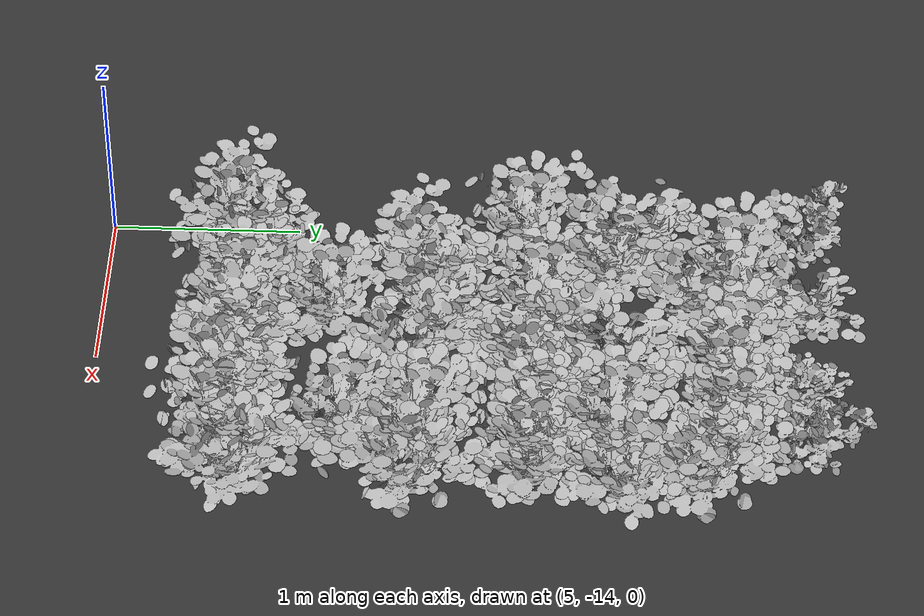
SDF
<sdf version="1.7">
 <world name="default">
  <model name="ground_plane">
   <static>1</static>
   <link name="link">
    <collision name="collision">
     <geometry><plane><normal>0 0 1</normal><size>100 100</size></plane></geometry>
     <surface>
      <contact><collide_bitmask>65535</collide_bitmask></contact>
      <friction><ode><mu>100</mu><mu2>50</mu2></ode></friction>
     </surface>
    </collision>
    <visual name="visual">
     <cast_shadows>0</cast_shadows>
     <geometry><plane><normal>0 0 1</normal><size>100 100</size></plane></geometry>
     <material>
      <ambient>0.2 0.2 0.2 1.0</ambient>
      <diffuse>0.2 0.2 0.2 1.0</diffuse>
      <specular>0.2 0.2 0.2 1.0</specular>
      <emissive>0.2 0.2 0.2 1.0</emissive>
     </material>
    </visual>
   </link>
  </model>
  <model name="ground">
   <pose>5 -0.5 0.01  3.141592654 0 0</pose>
   <static>true</static>
   <link name="body">
    <visual name="visual">
     <cast_shadows>0</cast_shadows>
     <geometry>
      <mesh><uri>file:///home/ifcosta/catkin_ws/src/cnn_line/worlds/models/ground.obj</uri></mesh>
     </geometry>
    </visual>
   </link>
  </model>
  <model name="plt_30017">
   <pose>5.09 -10.3 0.0143 0.0 0.0 -1.6119</pose>
   <static>true</static>
   <link name="body">
    <visual name="visual">
     <geometry>
      <mesh><uri>file:///home/ifcosta/catkin_ws/src/cnn_line/worlds/models/plant34.obj</uri></mesh>
     </geometry>
    </visual>
   </link>
  </model>
  <model name="plt_40017">
   <pose>5.09 -13.3 0.0143 0.0 0.0 0.80625</pose>
   <static>true</static>
   <link name="body">
    <visual name="visual">
     <geometry>
      <mesh><uri>file:///home/ifcosta/catkin_ws/src/cnn_line/worlds/models/plant37.obj</uri></mesh>
     </geometry>
    </visual>
   </link>
  </model>
  <model name="plt_40018">
   <pose>5.43 -13.2 0.0139 0.0 0.0 1.9287</pose>
   <static>true</static>
   <link name="body">
    <visual name="visual">
     <geometry>
      <mesh><uri>file:///home/ifcosta/catkin_ws/src/cnn_line/worlds/models/plant37.obj</uri></mesh>
     </geometry>
    </visual>
   </link>
  </model>
  <model name="plt_30019">
   <pose>5.7 -10.3 0.0103 0.0 0.0 -1.4289</pose>
   <static>true</static>
   <link name="body">
    <visual name="visual">
     <geometry>
      <mesh><uri>file:///home/ifcosta/catkin_ws/src/cnn_line/worlds/models/plant36.obj</uri></mesh>
     </geometry>
    </visual>
   </link>
  </model>
  <model name="plt_40019">
   <pose>5.7 -13.3 0.0103 0.0 0.0 0.30642</pose>
   <static>true</static>
   <link name="body">
    <visual name="visual">
     <geometry>
      <mesh><uri>file:///home/ifcosta/catkin_ws/src/cnn_line/worlds/models/plant37.obj</uri></mesh>
     </geometry>
    </visual>
   </link>
  </model>
  <model name="plt_40020">
   <pose>5.99 -13.2 0.0155 0.0 0.0 -2.019</pose>
   <static>true</static>
   <link name="body">
    <visual name="visual">
     <geometry>
      <mesh><uri>file:///home/ifcosta/catkin_ws/src/cnn_line/worlds/models/plant37.obj</uri></mesh>
     </geometry>
    </visual>
   </link>
  </model>
  <model name="plt_30021">
   <pose>6.31 -10.3 0.0148 0.0 0.0 0.13132</pose>
   <static>true</static>
   <link name="body">
    <visual name="visual">
     <geometry>
      <mesh><uri>file:///home/ifcosta/catkin_ws/src/cnn_line/worlds/models/plant31.obj</uri></mesh>
     </geometry>
    </visual>
   </link>
  </model>
  <model name="plt_40021">
   <pose>6.31 -13.3 0.0148 0.0 0.0 0.96213</pose>
   <static>true</static>
   <link name="body">
    <visual name="visual">
     <geometry>
      <mesh><uri>file:///home/ifcosta/catkin_ws/src/cnn_line/worlds/models/plant37.obj</uri></mesh>
     </geometry>
    </visual>
   </link>
  </model>
  <model name="plt_30022">
   <pose>6.63 -10.3 0.0137 0.0 0.0 -0.75681</pose>
   <static>true</static>
   <link name="body">
    <visual name="visual">
     <geometry>
      <mesh><uri>file:///home/ifcosta/catkin_ws/src/cnn_line/worlds/models/plant33.obj</uri></mesh>
     </geometry>
    </visual>
   </link>
  </model>
  <model name="plt_40022">
   <pose>6.63 -13.3 0.0137 0.0 0.0 0.63949</pose>
   <static>true</static>
   <link name="body">
    <visual name="visual">
     <geometry>
      <mesh><uri>file:///home/ifcosta/catkin_ws/src/cnn_line/worlds/models/plant37.obj</uri></mesh>
     </geometry>
    </visual>
   </link>
  </model>
  <model name="plt_40023">
   <pose>6.9 -13.2 0.0141 0.0 0.0 -0.55546</pose>
   <static>true</static>
   <link name="body">
    <visual name="visual">
     <geometry>
      <mesh><uri>file:///home/ifcosta/catkin_ws/src/cnn_line/worlds/models/plant37.obj</uri></mesh>
     </geometry>
    </visual>
   </link>
  </model>
  <model name="plt_40053">
   <pose>5.73 -12.8 0.0159 0.0 0.0 0.23496</pose>
   <static>true</static>
   <link name="body">
    <visual name="visual">
     <geometry>
      <mesh><uri>file:///home/ifcosta/catkin_ws/src/cnn_line/worlds/models/plant37.obj</uri></mesh>
     </geometry>
    </visual>
   </link>
  </model>
  <model name="plt_40056">
   <pose>6.57 -12.7 0.0154 0.0 0.0 0.076355</pose>
   <static>true</static>
   <link name="body">
    <visual name="visual">
     <geometry>
      <mesh><uri>file:///home/ifcosta/catkin_ws/src/cnn_line/worlds/models/plant37.obj</uri></mesh>
     </geometry>
    </visual>
   </link>
  </model>
  <model name="plt_40086">
   <pose>5.43 -12.3 0.0145 0.0 0.0 0.94072</pose>
   <static>true</static>
   <link name="body">
    <visual name="visual">
     <geometry>
      <mesh><uri>file:///home/ifcosta/catkin_ws/src/cnn_line/worlds/models/plant37.obj</uri></mesh>
     </geometry>
    </visual>
   </link>
  </model>
  <model name="plt_40087">
   <pose>5.71 -12.2 0.0154 0.0 0.0 1.373</pose>
   <static>true</static>
   <link name="body">
    <visual name="visual">
     <geometry>
      <mesh><uri>file:///home/ifcosta/catkin_ws/src/cnn_line/worlds/models/plant37.obj</uri></mesh>
     </geometry>
    </visual>
   </link>
  </model>
  <model name="plt_40088">
   <pose>6.03 -12.3 0.0131 0.0 0.0 -0.51001</pose>
   <static>true</static>
   <link name="body">
    <visual name="visual">
     <geometry>
      <mesh><uri>file:///home/ifcosta/catkin_ws/src/cnn_line/worlds/models/plant37.obj</uri></mesh>
     </geometry>
    </visual>
   </link>
  </model>
  <model name="plt_40090">
   <pose>6.59 -12.3 0.0144 0.0 0.0 0.022051</pose>
   <static>true</static>
   <link name="body">
    <visual name="visual">
     <geometry>
      <mesh><uri>file:///home/ifcosta/catkin_ws/src/cnn_line/worlds/models/plant37.obj</uri></mesh>
     </geometry>
    </visual>
   </link>
  </model>
  <model name="plt_40091">
   <pose>6.91 -12.3 0.0156 0.0 0.0 2.2329</pose>
   <static>true</static>
   <link name="body">
    <visual name="visual">
     <geometry>
      <mesh><uri>file:///home/ifcosta/catkin_ws/src/cnn_line/worlds/models/plant37.obj</uri></mesh>
     </geometry>
    </visual>
   </link>
  </model>
  <model name="plt_40119">
   <pose>5.12 -11.8 0.0183 0.0 0.0 0.20518</pose>
   <static>true</static>
   <link name="body">
    <visual name="visual">
     <geometry>
      <mesh><uri>file:///home/ifcosta/catkin_ws/src/cnn_line/worlds/models/plant37.obj</uri></mesh>
     </geometry>
    </visual>
   </link>
  </model>
  <model name="plt_40121">
   <pose>5.67 -11.7 0.0171 0.0 0.0 0.2124</pose>
   <static>true</static>
   <link name="body">
    <visual name="visual">
     <geometry>
      <mesh><uri>file:///home/ifcosta/catkin_ws/src/cnn_line/worlds/models/plant37.obj</uri></mesh>
     </geometry>
    </visual>
   </link>
  </model>
  <model name="plt_40122">
   <pose>6.03 -11.7 0.0143 0.0 0.0 -0.29364</pose>
   <static>true</static>
   <link name="body">
    <visual name="visual">
     <geometry>
      <mesh><uri>file:///home/ifcosta/catkin_ws/src/cnn_line/worlds/models/plant37.obj</uri></mesh>
     </geometry>
    </visual>
   </link>
  </model>
  <model name="plt_40123">
   <pose>6.3 -11.7 0.0143 0.0 0.0 1.0309</pose>
   <static>true</static>
   <link name="body">
    <visual name="visual">
     <geometry>
      <mesh><uri>file:///home/ifcosta/catkin_ws/src/cnn_line/worlds/models/plant37.obj</uri></mesh>
     </geometry>
    </visual>
   </link>
  </model>
  <model name="plt_40124">
   <pose>6.63 -11.7 0.0152 0.0 0.0 0.33762</pose>
   <static>true</static>
   <link name="body">
    <visual name="visual">
     <geometry>
      <mesh><uri>file:///home/ifcosta/catkin_ws/src/cnn_line/worlds/models/plant37.obj</uri></mesh>
     </geometry>
    </visual>
   </link>
  </model>
  <model name="plt_40125">
   <pose>6.84 -11.7 0.0144 0.0 0.0 0.53805</pose>
   <static>true</static>
   <link name="body">
    <visual name="visual">
     <geometry>
      <mesh><uri>file:///home/ifcosta/catkin_ws/src/cnn_line/worlds/models/plant37.obj</uri></mesh>
     </geometry>
    </visual>
   </link>
  </model>
  <model name="plt_40153">
   <pose>5.19 -11.2 0.0147 0.0 0.0 -1.3511</pose>
   <static>true</static>
   <link name="body">
    <visual name="visual">
     <geometry>
      <mesh><uri>file:///home/ifcosta/catkin_ws/src/cnn_line/worlds/models/plant37.obj</uri></mesh>
     </geometry>
    </visual>
   </link>
  </model>
  <model name="plt_40154">
   <pose>5.38 -11.3 0.0161 0.0 0.0 -0.17267</pose>
   <static>true</static>
   <link name="body">
    <visual name="visual">
     <geometry>
      <mesh><uri>file:///home/ifcosta/catkin_ws/src/cnn_line/worlds/models/plant37.obj</uri></mesh>
     </geometry>
    </visual>
   </link>
  </model>
  <model name="plt_40156">
   <pose>6.03 -11.3 0.0135 0.0 0.0 -1.6908</pose>
   <static>true</static>
   <link name="body">
    <visual name="visual">
     <geometry>
      <mesh><uri>file:///home/ifcosta/catkin_ws/src/cnn_line/worlds/models/plant37.obj</uri></mesh>
     </geometry>
    </visual>
   </link>
  </model>
  <model name="plt_40158">
   <pose>6.53 -11.3 0.0191 0.0 0.0 -0.01205</pose>
   <static>true</static>
   <link name="body">
    <visual name="visual">
     <geometry>
      <mesh><uri>file:///home/ifcosta/catkin_ws/src/cnn_line/worlds/models/plant37.obj</uri></mesh>
     </geometry>
    </visual>
   </link>
  </model>
  <model name="plt_40159">
   <pose>6.92 -11.2 0.0172 0.0 0.0 -0.097959</pose>
   <static>true</static>
   <link name="body">
    <visual name="visual">
     <geometry>
      <mesh><uri>file:///home/ifcosta/catkin_ws/src/cnn_line/worlds/models/plant37.obj</uri></mesh>
     </geometry>
    </visual>
   </link>
  </model>
  <model name="plt_40188">
   <pose>5.39 -10.7 0.0161 0.0 0.0 0.13879</pose>
   <static>true</static>
   <link name="body">
    <visual name="visual">
     <geometry>
      <mesh><uri>file:///home/ifcosta/catkin_ws/src/cnn_line/worlds/models/plant37.obj</uri></mesh>
     </geometry>
    </visual>
   </link>
  </model>
  <model name="plt_40189">
   <pose>5.64 -10.8 0.0178 0.0 0.0 -0.95978</pose>
   <static>true</static>
   <link name="body">
    <visual name="visual">
     <geometry>
      <mesh><uri>file:///home/ifcosta/catkin_ws/src/cnn_line/worlds/models/plant37.obj</uri></mesh>
     </geometry>
    </visual>
   </link>
  </model>
  <model name="plt_40190">
   <pose>6.03 -10.7 0.0179 0.0 0.0 -0.024514</pose>
   <static>true</static>
   <link name="body">
    <visual name="visual">
     <geometry>
      <mesh><uri>file:///home/ifcosta/catkin_ws/src/cnn_line/worlds/models/plant37.obj</uri></mesh>
     </geometry>
    </visual>
   </link>
  </model>
  <model name="plt_40191">
   <pose>6.28 -10.7 0.0162 0.0 0.0 0.56378</pose>
   <static>true</static>
   <link name="body">
    <visual name="visual">
     <geometry>
      <mesh><uri>file:///home/ifcosta/catkin_ws/src/cnn_line/worlds/models/plant37.obj</uri></mesh>
     </geometry>
    </visual>
   </link>
  </model>
  <model name="plt_40192">
   <pose>6.57 -10.7 0.0154 0.0 0.0 0.28113</pose>
   <static>true</static>
   <link name="body">
    <visual name="visual">
     <geometry>
      <mesh><uri>file:///home/ifcosta/catkin_ws/src/cnn_line/worlds/models/plant37.obj</uri></mesh>
     </geometry>
    </visual>
   </link>
  </model>
  <model name="plt_40193">
   <pose>6.88 -10.8 0.0156 0.0 0.0 2.3565</pose>
   <static>true</static>
   <link name="body">
    <visual name="visual">
     <geometry>
      <mesh><uri>file:///home/ifcosta/catkin_ws/src/cnn_line/worlds/models/plant37.obj</uri></mesh>
     </geometry>
    </visual>
   </link>
  </model>
 </world>
</sdf>
